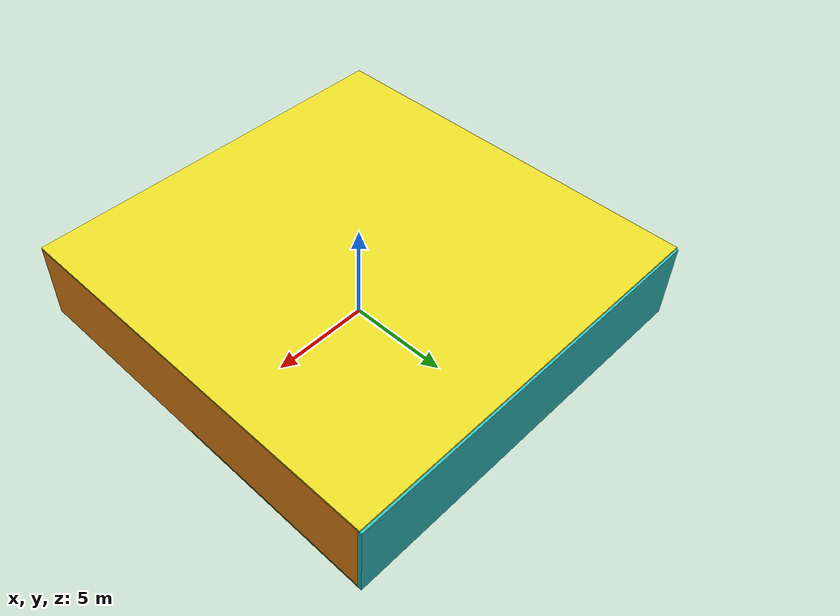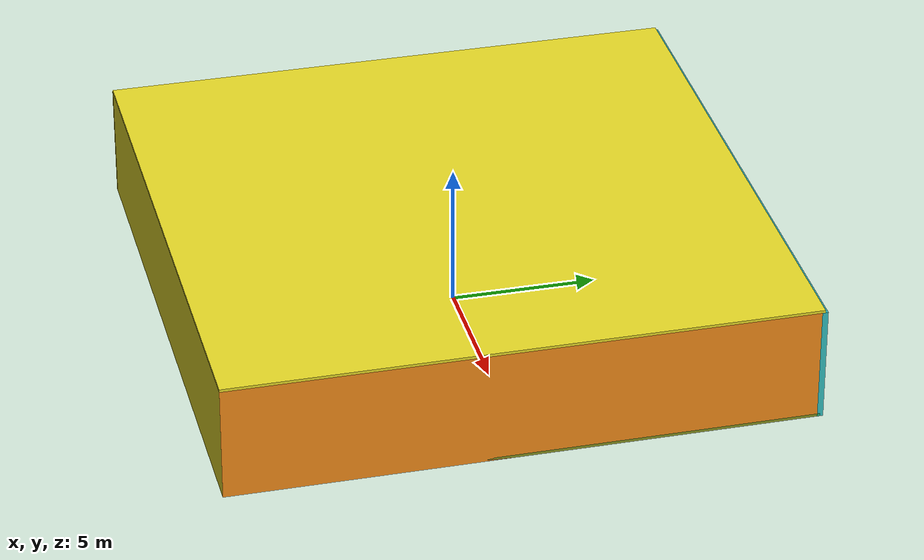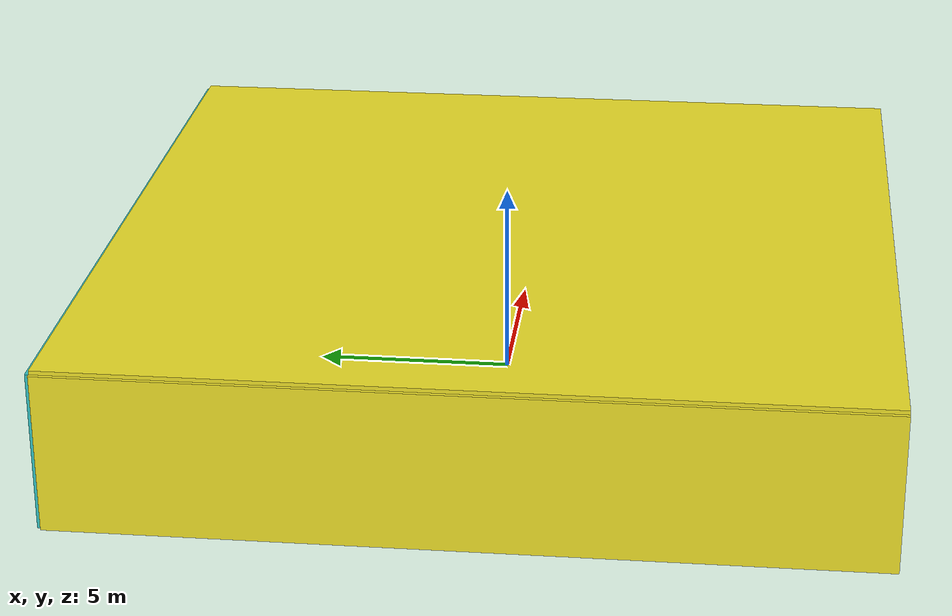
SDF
<sdf version="1.4">
 <world name="default">
  <physics type="ode">
   <max_step_size>0.001</max_step_size>
   <real_time_factor>1</real_time_factor>
   <real_time_update_rate>1000</real_time_update_rate>
   <gravity>0 0 -9.8</gravity>
  </physics>
  <scene><ambient>0.4 0.4 0.4 1</ambient><background>0.7 0.7 0.7 1</background><shadows>1</shadows></scene>
  <model name="Surrounding">
   <static>1</static>
   <link name="Ceiling">
    <collision name="Ceiling_Collision"><geometry><box><size>20 20 0.1</size></box></geometry></collision>
    <visual name="Ceiling_Visual">
     <geometry><box><size>20 20 0.1</size></box></geometry>
     <material>
      <script><uri>file://media/materials/scripts/gazebo.material</uri><name>Gazebo/Yellow</name></script>
     </material>
    </visual>
    <pose>0 0 4.05 0 0 0</pose>
   </link>
   <link name="Wall_South">
    <collision name="Wall_South_Collision">
     <geometry><box><size>20 0 4</size></box></geometry>
     <pose>0 0 2 0 -0 0</pose>
    </collision>
    <visual name="Wall_South_Visual">
     <pose>0 0 2 0 -0 0</pose>
     <geometry><box><size>20 0 4</size></box></geometry>
     <material>
      <script><uri>file://media/materials/scripts/gazebo.material</uri><name>Gazebo/YellowGlow</name></script>
     </material>
    </visual>
    <velocity_decay><linear>0</linear><angular>0</angular></velocity_decay>
    <pose>0 -10 0 0 -0 0</pose>
   </link>
   <link name="Wall_East">
    <collision name="Wall_21_Collision">
     <geometry><box><size>20 0 4</size></box></geometry>
     <pose>0 0 2 0 -0 0</pose>
    </collision>
    <visual name="Wall_21_Visual">
     <pose>0 0 2 0 -0 0</pose>
     <geometry><box><size>20 0 4</size></box></geometry>
     <material>
      <script><uri>file://media/materials/scripts/gazebo.material</uri><name>Gazebo/Orange</name></script>
     </material>
    </visual>
    <velocity_decay><linear>0</linear><angular>0</angular></velocity_decay>
    <pose>10 0 0 0 -0 1.5708</pose>
   </link>
   <link name="Wall_North">
    <collision name="Wall_22_Collision">
     <geometry><box><size>20 0.2 4</size></box></geometry>
     <pose>0 0 2 0 -0 0</pose>
    </collision>
    <visual name="Wall_22_Visual">
     <pose>0 0 2 0 -0 0</pose>
     <geometry><box><size>20 0.2 4</size></box></geometry>
     <material>
      <script>
       <uri>file://media/materials/scripts/gazebo.material</uri>
       <name>Gazebo/TurquoiseGlowOutline</name>
      </script>
     </material>
    </visual>
    <velocity_decay><linear>0</linear><angular>0</angular></velocity_decay>
    <pose>0 10 0 0 -0 0</pose>
   </link>
   <link name="Wall_West">
    <collision name="Wall_23_Collision">
     <geometry><box><size>20 0.2 4</size></box></geometry>
     <pose>0 0 2 0 -0 0</pose>
    </collision>
    <visual name="Wall_23_Visual">
     <pose>0 0 2 0 -0 0</pose>
     <geometry><box><size>20 0.2 4</size></box></geometry>
     <material>
      <script><uri>file://media/materials/scripts/gazebo.material</uri><name>Gazebo/YellowGlow</name></script>
     </material>
    </visual>
    <velocity_decay><linear>0</linear><angular>0</angular></velocity_decay>
    <pose>-10 0 0 0 0 -1.5708</pose>
   </link>
   <link name="Ground_link">
    <collision name="collision">
     <pose>0 0 .05 0 -0 0</pose>
     <geometry><box><size>20 20 0.1</size></box></geometry>
    </collision>
    <visual name="visual">
     <pose>0 0 .05 0 -0 0</pose>
     <geometry><box><size>20 20 0.1</size></box></geometry>
     <material>
      <script><uri>file://media/materials/scripts/gazebo.material</uri><name>Gazebo/GreenTransparent</name></script>
     </material>
    </visual>
   </link>
   <static>1</static>
  </model>
  <spherical_coordinates>
   <surface_model>EARTH_WGS84</surface_model>
   <latitude_deg>0</latitude_deg>
   <longitude_deg>0</longitude_deg>
   <elevation>0</elevation>
   <heading_deg>0</heading_deg>
  </spherical_coordinates>
  <light name="lightball_0" type="diffuse">
   <diffuse>0.8 0.8 0.8 1</diffuse>
   <specular>0.2 0.2 0.2 1</specular>
   <attenuation>
    <range>100</range>
    <constant>0.7</constant>
    <linear>0.01</linear>
    <quadratic>0.001</quadratic>
   </attenuation>
   <direction>-0.5 0.1 -0.9</direction>
   <pose>2.00554262717 -8.7106822907 1.57863483269 0 0 0</pose>
  </light>
  <light name="lightball_1" type="diffuse">
   <diffuse>0.8 0.8 0.8 1</diffuse>
   <specular>0.2 0.2 0.2 1</specular>
   <attenuation>
    <range>100</range>
    <constant>0.7</constant>
    <linear>0.01</linear>
    <quadratic>0.001</quadratic>
   </attenuation>
   <direction>-0.5 0.1 -0.9</direction>
   <pose>-4.39227658679 9.27950550679 1.04759740639 0 0 0</pose>
  </light>
  <light name="lightball_2" type="diffuse">
   <diffuse>0.8 0.8 0.8 1</diffuse>
   <specular>0.2 0.2 0.2 1</specular>
   <attenuation>
    <range>100</range>
    <constant>0.7</constant>
    <linear>0.01</linear>
    <quadratic>0.001</quadratic>
   </attenuation>
   <direction>-0.5 0.1 -0.9</direction>
   <pose>2.44055608488 -7.55843639243 0.514282556627 0 0 0</pose>
  </light>
  <light name="lightball_3" type="diffuse">
   <diffuse>0.8 0.8 0.8 1</diffuse>
   <specular>0.2 0.2 0.2 1</specular>
   <attenuation>
    <range>100</range>
    <constant>0.7</constant>
    <linear>0.01</linear>
    <quadratic>0.001</quadratic>
   </attenuation>
   <direction>-0.5 0.1 -0.9</direction>
   <pose>5.15730487139 2.52057638968 2.41335781699 0 0 0</pose>
  </light>
  <include><uri>model://cabinet</uri><pose>-8.18672476585 4.60453189786 0 0 0 1.46504256202</pose></include>
  <include>
   <uri>model://robocup_3Dsim_goal</uri>
   <pose>1.12410643314 4.77251036623 0 0 0 0.117496721776</pose>
  </include>
  <include><uri>model://table</uri><pose>7.93468770489 -7.03105553982 0 0 0 1.4563856214</pose></include>
  <include><uri>model://cabinet</uri><pose>6.8943806894 -2.17949943554 0 0 0 0.520386868765</pose></include>
  <include><uri>model://cabinet</uri><pose>7.45170948216 4.80244692013 0 0 0 2.16343250383</pose></include>
 </world>
</sdf>

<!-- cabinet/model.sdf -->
<sdf version="1.5">
  <model name="cabinet">
    <static>true</static>
    <link name="cabinet_bottom_plate">
      <inertial>
        <pose>0 0 -1 0 0 0</pose>
        <inertia>
          <ixx>2.050000</ixx>
          <ixy>0</ixy>
          <ixz>0</ixz>
          <iyy>2.050000</iyy>
          <iyz>0</iyz>
          <izz>2.050000</izz>
        </inertia>
        <mass>25.000000</mass>
      </inertial>
      <collision name="cabinet_bottom_plate_geom">
        <pose>0 0 0.010000 0 0 0</pose>
        <geometry>
          <box>
            <size>0.450000 0.450000 0.020000</size>
          </box>
        </geometry>
      </collision>
      <visual name="cabinet_bottom_plate_geom_visual">
        <pose>0 0 0.010000 0 0 0</pose>
        <geometry>
          <box>
            <size>0.450000 0.450000 0.020000</size>
          </box>
        </geometry>
        <material>
          <script>
            <uri>model://media/materials/scripts/gazebo.material</uri>
            <name>Gazebo/Wood</name>
          </script>
        </material>
      </visual>
      <collision name="cabinet_bottom_plate_geom_cabinet_back_plate">
        <pose>0.235000 0 0.510000 0 0 0</pose>
        <geometry>
          <box>
            <size>0.020000 0.450000 1.020000</size>
          </box>
        </geometry>
      </collision>
      <visual name="cabinet_bottom_plate_geom_cabinet_back_plate_visual">
        <pose>0.235000 0 0.510000 0 0 0</pose>
        <geometry>
          <box>
            <size>0.020000 0.450000 1.020000</size>
          </box>
        </geometry>
        <material>
          <script>
            <uri>model://media/materials/scripts/gazebo.material</uri>
            <name>Gazebo/Wood</name>
          </script>
        </material>
      </visual>
      <collision name="cabinet_bottom_plate_geom_cabinet_left_plate">
        <pose>0 0.235000 0.510000 0 0 0</pose>
        <geometry>
          <box>
            <size>0.450000 0.020000 1.020000</size>
          </box>
        </geometry>
      </collision>
      <visual name="cabinet_bottom_plate_geom_cabinet_left_plate_visual">
        <pose>0 0.235000 0.510000 0 0 0</pose>
        <geometry>
          <box>
            <size>0.450000 0.020000 1.020000</size>
          </box>
        </geometry>
        <material>
          <script>
            <uri>model://media/materials/scripts/gazebo.material</uri>
            <name>Gazebo/Wood</name>
          </script>
        </material>
      </visual>
      <collision name="cabinet_bottom_plate_geom_cabinet_middle_plate">
        <pose>0 0 0.510000 0 0 0</pose>
        <geometry>
          <box>
            <size>0.450000 0.450000 0.020000</size>
          </box>
        </geometry>
      </collision>
      <visual name="cabinet_bottom_plate_geom_cabinet_middle_plate_visual">
        <pose>0 0 0.510000 0 0 0</pose>
        <geometry>
          <box>
            <size>0.450000 0.450000 0.020000</size>
          </box>
        </geometry>
        <material>
          <script>
            <uri>model://media/materials/scripts/gazebo.material</uri>
            <name>Gazebo/Wood</name>
          </script>
        </material>
      </visual>
      <collision name="cabinet_bottom_plate_geom_cabinet_right_plate">
        <pose>0 -0.235000 0.510000 0 0 0</pose>
        <geometry>
          <box>
            <size>0.450000 0.020000 1.020000</size>
          </box>
        </geometry>
      </collision>
      <visual name="cabinet_bottom_plate_geom_cabinet_right_plate_visual">
        <pose>0 -0.235000 0.510000 0 0 0</pose>
        <geometry>
          <box>
            <size>0.450000 0.020000 1.020000</size>
          </box>
        </geometry>
        <material>
          <script>
            <uri>model://media/materials/scripts/gazebo.material</uri>
            <name>Gazebo/Wood</name>
          </script>
        </material>
      </visual>
      <collision name="cabinet_bottom_plate_geom_cabinet_top_plate">
        <pose>0 0 1.010000 0 0 0</pose>
        <geometry>
          <box>
            <size>0.450000 0.450000 0.020000</size>
          </box>
        </geometry>
      </collision>
      <visual name="cabinet_bottom_plate_geom_cabinet_top_plate_visual">
        <pose>0 0 1.010000 0 0 0</pose>
        <geometry>
          <box>
            <size>0.450000 0.450000 0.020000</size>
          </box>
        </geometry>
        <material>
          <script>
            <uri>model://media/materials/scripts/gazebo.material</uri>
            <name>Gazebo/Wood</name>
          </script>
        </material>
      </visual>
    </link>
  </model>
</sdf>

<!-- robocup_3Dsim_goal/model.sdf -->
<sdf version="1.5">
  <model name="robocup_3d_goal">
    <static>true</static>
    <link name="left_post">
      <pose>0 1.05 0.45 0 0 0</pose>
      <collision name="collision">
        <geometry>
          <cylinder>
            <radius>0.05</radius>
            <length>0.9</length>
          </cylinder>
        </geometry>
      </collision>
      <visual name="visual">
        <geometry>
          <cylinder>
            <radius>0.05</radius>
            <length>0.9</length>
          </cylinder>
        </geometry>
        <material>
          <script>
            <uri>file://media/materials/scripts/gazebo.material</uri>
            <name>Gazebo/ZincYellow</name>
          </script>
        </material>
      </visual>
    </link>
    <link name="left_support_horiz_lower">
      <pose>0.30 1.05 0.01 0 0 0</pose>
      <collision name="collision">
        <geometry>
          <box>
            <size>0.50 0.02 0.02</size>
          </box>
        </geometry>
      </collision>
      <visual name="visual">
        <geometry>
          <box>
            <size>0.50 0.02 0.02</size>
          </box>
        </geometry>
        <material>
          <script>
            <uri>file://media/materials/scripts/gazebo.material</uri>
            <name>Gazebo/White</name>
          </script>
        </material>
      </visual>
    </link>
    <link name="left_support_horiz_upper">
      <pose>0.30 1.05 0.79 0 0 0</pose>
      <collision name="collision">
        <geometry>
          <box>
            <size>0.50 0.02 0.02</size>
          </box>
        </geometry>
      </collision>
      <visual name="visual">
        <geometry>
          <box>
            <size>0.50 0.02 0.02</size>
          </box>
        </geometry>
        <material>
          <script>
            <uri>file://media/materials/scripts/gazebo.material</uri>
            <name>Gazebo/White</name>
          </script>
        </material>
      </visual>
    </link>
    <link name="left_support_vertical">
      <pose>0.56 1.05 0.4 0 1.5708 0</pose>
      <collision name="collision">
        <geometry>
          <box>
            <size>0.80 0.02 0.02</size>
          </box>
        </geometry>
      </collision>
      <visual name="visual">
        <geometry>
          <box>
            <size>0.80 0.02 0.02</size>
          </box>
        </geometry>
        <material>
          <script>
            <uri>file://media/materials/scripts/gazebo.material</uri>
            <name>Gazebo/White</name>
          </script>
        </material>
      </visual>
    </link>
    <link name="right_support_horiz_lower">
      <pose>0.30 -1.05 0.01 0 0 0</pose>
      <collision name="collision">
        <geometry>
          <box>
            <size>0.50 0.02 0.02</size>
          </box>
        </geometry>
      </collision>
      <visual name="visual">
        <geometry>
          <box>
            <size>0.50 0.02 0.02</size>
          </box>
        </geometry>
        <material>
          <script>
            <uri>file://media/materials/scripts/gazebo.material</uri>
            <name>Gazebo/White</name>
          </script>
        </material>
      </visual>
    </link>
    <link name="right_support_horiz_upper">
      <pose>0.30 -1.05 0.79 0 0 0</pose>
      <collision name="collision">
        <geometry>
          <box>
            <size>0.50 0.02 0.02</size>
          </box>
        </geometry>
      </collision>
      <visual name="visual">
        <geometry>
          <box>
            <size>0.50 0.02 0.02</size>
          </box>
        </geometry>
        <material>
          <script>
            <uri>file://media/materials/scripts/gazebo.material</uri>
            <name>Gazebo/White</name>
          </script>
        </material>
      </visual>
    </link>
    <link name="right_support_vertical">
      <pose>0.56 -1.05 0.4 0 1.5708 0</pose>
      <collision name="collision">
        <geometry>
          <box>
            <size>0.80 0.02 0.02</size>
          </box>
        </geometry>
      </collision>
      <visual name="visual">
        <geometry>
          <box>
            <size>0.80 0.02 0.02</size>
          </box>
        </geometry>
        <material>
          <script>
            <uri>file://media/materials/scripts/gazebo.material</uri>
            <name>Gazebo/White</name>
          </script>
        </material>
      </visual>
    </link>
    <link name="center_support_horiz_lower">
      <pose>0.56 0 0.01 0 1.5708 0</pose>
      <collision name="collision">
        <geometry>
          <box>
            <size>0.02 2.08 0.02</size>
          </box>
        </geometry>
      </collision>
      <visual name="visual">
        <geometry>
          <box>
            <size>0.02 2.08 0.02</size>
          </box>
        </geometry>
        <material>
          <script>
            <uri>file://media/materials/scripts/gazebo.material</uri>
            <name>Gazebo/White</name>
          </script>
        </material>
      </visual>
    </link>
    <link name="center_support_horiz_upper">
      <pose>0.56 0 0.79 0 1.5708 0</pose>
      <collision name="collision">
        <geometry>
          <box>
            <size>0.02 2.08 0.02</size>
          </box>
        </geometry>
      </collision>
      <visual name="visual">
        <geometry>
          <box>
            <size>0.02 2.08 0.02</size>
          </box>
        </geometry>
        <material>
          <script>
            <uri>file://media/materials/scripts/gazebo.material</uri>
            <name>Gazebo/White</name>
          </script>
        </material>
      </visual>
    </link>
    <link name="right_post">
      <pose>0 -1.05 0.45 0 0 0</pose>
      <collision name="collision">
        <geometry>
          <cylinder>
            <radius>0.05</radius>
            <length>0.9</length>
          </cylinder>
        </geometry>
      </collision>
      <visual name="visual">
        <geometry>
          <cylinder>
            <radius>0.05</radius>
            <length>0.9</length>
          </cylinder>
        </geometry>
        <material>
          <script>
            <uri>file://media/materials/scripts/gazebo.material</uri>
            <name>Gazebo/ZincYellow</name>
          </script>
        </material>
      </visual>
    </link>
    <link name="crossbar">
      <pose>0 0 0.85 1.57 1.57 0</pose>
      <collision name="collision">
        <geometry>
          <cylinder>
            <radius>0.05</radius>
            <length>2.0</length>
          </cylinder>
        </geometry>
      </collision>
      <visual name="visual">
        <geometry>
          <cylinder>
            <radius>0.05</radius>
            <length>2.0</length>
          </cylinder>
        </geometry>
        <material>
          <script>
            <uri>file://media/materials/scripts/gazebo.material</uri>
            <name>Gazebo/ZincYellow</name>
          </script>
        </material>
      </visual>
    </link>
    <link name="center_net">
      <pose>0.56 0 0.40 0 0 0</pose>
      <collision name="collision">
        <geometry>
          <box>
            <size>0.01 2.1 0.80</size>
          </box>
        </geometry>
      </collision>
      <visual name="visual">
        <geometry>
          <box>
            <size>0.01 2.1 0.80</size>
          </box>
        </geometry>
        <material>
          <script>
            <uri>model://../model_source/models/robocup09_spl_field/materials/scripts/</uri>
            <uri>model://../model_source/models/robocup09_spl_field/materials/textures/</uri>
            <name>RoboCup/Net</name>
          </script>
        </material>
      </visual>
    </link>
    <link name="left_net">
      <pose>0.30 1.05 0.40 0 0 0</pose>
      <collision name="collision">
        <geometry>
          <box>
            <size>0.50 0.01 0.76</size>
          </box>
        </geometry>
      </collision>
      <visual name="visual">
        <geometry>
          <box>
            <size>0.50 0.01 0.76</size>
          </box>
        </geometry>
        <material>
          <script>
            <uri>model://../model_source/models/robocup09_spl_field/materials/scripts/</uri>
            <uri>model://../model_source/models/robocup09_spl_field/materials/textures/</uri>
            <name>RoboCup/Net</name>
          </script>
        </material>
      </visual>
    </link>
    <link name="right_net">
      <pose>0.30 -1.05 0.40 0 0 0</pose>
      <collision name="collision">
        <geometry>
          <box>
            <size>0.50 0.01 0.76</size>
          </box>
        </geometry>
      </collision>
      <visual name="visual">
        <geometry>
          <box>
            <size>0.50 0.01 0.76</size>
          </box>
        </geometry>
        <material>
          <script>
            <uri>model://../model_source/models/robocup09_spl_field/materials/scripts/</uri>
            <uri>model://../model_source/models/robocup09_spl_field/materials/textures/</uri>
            <name>RoboCup/Net</name>
          </script>
        </material>
      </visual>
    </link>
  </model>
</sdf>

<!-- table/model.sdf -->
<sdf version="1.5">
  <model name="table">
    <static>true</static>
    <link name="link">
      <collision name="surface">
        <pose>0 0 1.0 0 0 0</pose>
        <geometry>
          <box>
            <size>1.5 0.8 0.03</size>
          </box>
        </geometry>
        <surface>
          <friction>
            <ode>
              <mu>0.6</mu>
              <mu2>0.6</mu2>
            </ode>
          </friction>
        </surface>
      </collision>
      <visual name="visual1">
        <pose>0 0 1.0 0 0 0</pose>
        <geometry>
          <box>
            <size>1.5 0.8 0.03</size>
          </box>
        </geometry>
        <material>
          <script>
            <uri>model://media/materials/scripts/gazebo.material</uri>
            <name>Gazebo/Wood</name>
          </script>
        </material>
      </visual>
      <collision name="front_left_leg">
        <pose>0.68 0.38 0.5 0 0 0</pose>
        <geometry>
          <cylinder>
            <radius>0.02</radius>
            <length>1.0</length>
          </cylinder>
        </geometry>
      </collision>
      <visual name="front_left_leg">
        <pose>0.68 0.38 0.5 0 0 0</pose>
        <geometry>
          <cylinder>
            <radius>0.02</radius>
            <length>1.0</length>
          </cylinder>
        </geometry>
        <material>
          <script>
            <uri>model://media/materials/scripts/gazebo.material</uri>
            <name>Gazebo/Grey</name>
          </script>
        </material>
      </visual>
      <collision name="front_right_leg">
        <pose>0.68 -0.38 0.5 0 0 0</pose>
        <geometry>
          <cylinder>
            <radius>0.02</radius>
            <length>1.0</length>
          </cylinder>
        </geometry>
      </collision>
      <visual name="front_right_leg">
        <pose>0.68 -0.38 0.5 0 0 0</pose>
        <geometry>
          <cylinder>
            <radius>0.02</radius>
            <length>1.0</length>
          </cylinder>
        </geometry>
        <material>
          <script>
            <uri>model://media/materials/scripts/gazebo.material</uri>
            <name>Gazebo/Grey</name>
          </script>
        </material>
      </visual>
      <collision name="back_right_leg">
        <pose>-0.68 -0.38 0.5 0 0 0</pose>
        <geometry>
          <cylinder>
            <radius>0.02</radius>
            <length>1.0</length>
          </cylinder>
        </geometry>
      </collision>
      <visual name="back_right_leg">
        <pose>-0.68 -0.38 0.5 0 0 0</pose>
        <geometry>
          <cylinder>
            <radius>0.02</radius>
            <length>1.0</length>
          </cylinder>
        </geometry>
        <material>
          <script>
            <uri>model://media/materials/scripts/gazebo.material</uri>
            <name>Gazebo/Grey</name>
          </script>
        </material>
      </visual>
      <collision name="back_left_leg">
        <pose>-0.68 0.38 0.5 0 0 0</pose>
        <geometry>
          <cylinder>
            <radius>0.02</radius>
            <length>1.0</length>
          </cylinder>
        </geometry>
      </collision>
      <visual name="back_left_leg">
        <pose>-0.68 0.38 0.5 0 0 0</pose>
        <geometry>
          <cylinder>
            <radius>0.02</radius>
            <length>1.0</length>
          </cylinder>
        </geometry>
        <material>
          <script>
            <uri>model://media/materials/scripts/gazebo.material</uri>
            <name>Gazebo/Grey</name>
          </script>
        </material>
      </visual>
    </link>
  </model>
</sdf>
